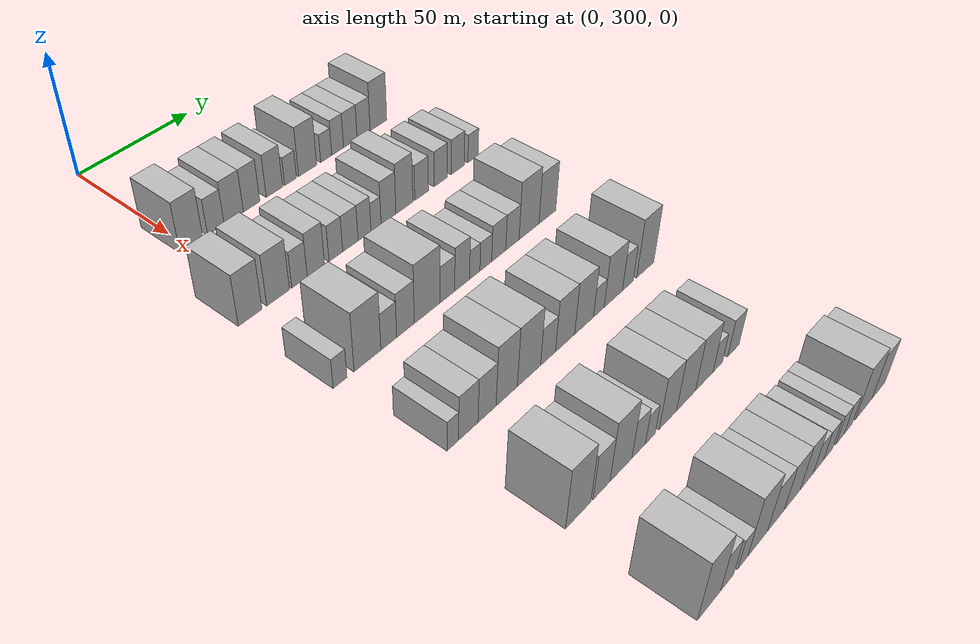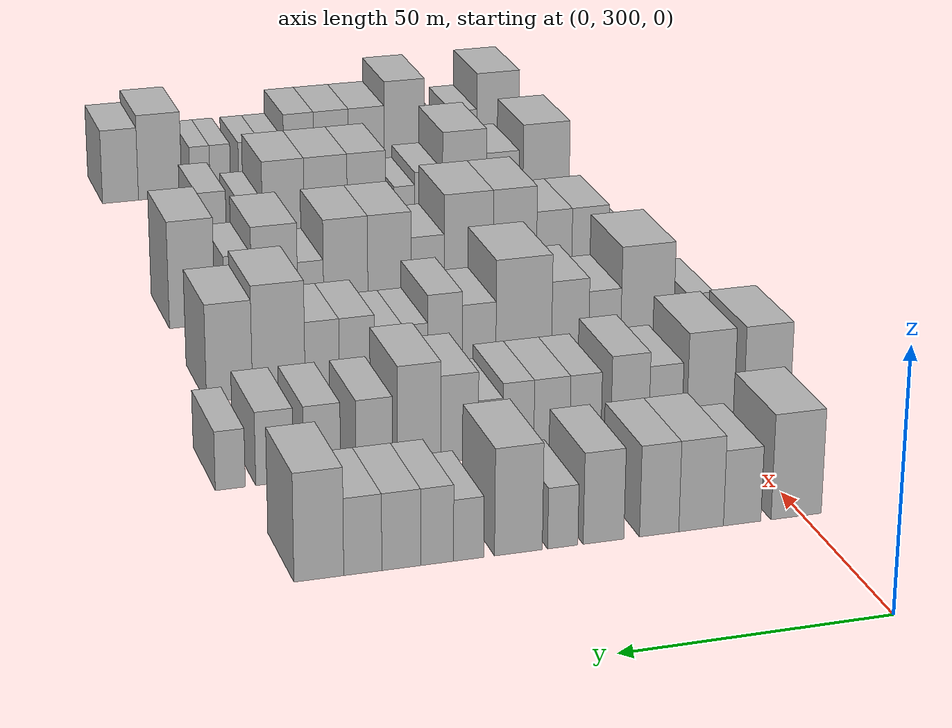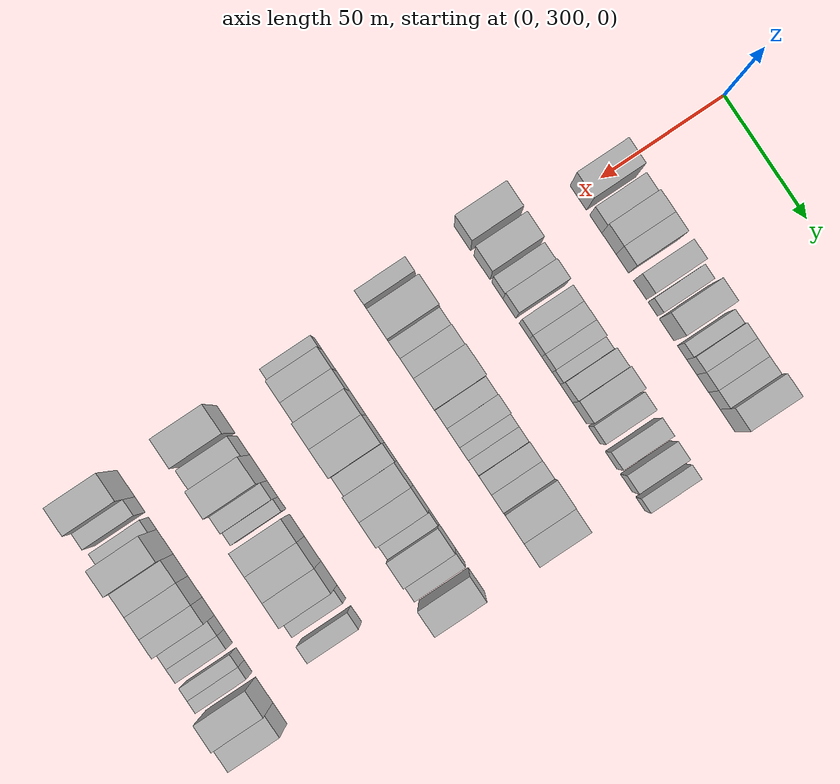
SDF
<sdf version="1.6">
 <world name="default">
  <model name="building_99">
   <static>1</static>
   <pose>50.0000 301.2675 0 0.000000 0.000000 0.000000</pose>
   <link name="link">
    <pose>0 0 10.50 0 0 0</pose>
    <collision name="collision"><geometry><box><size>20.0000 9.8966 21.0000</size></box></geometry></collision>
    <visual name="visual">
     <cast_shadows>0</cast_shadows>
     <geometry><box><size>20.0000 9.8966 21.0000</size></box></geometry>
     <material>
      <script>
       <uri>model://HANNAS_wall/materials/scripts</uri>
       <uri>model://HANNAS_wall/materials/textures</uri>
       <name>vrc/HANNAS_wall</name>
      </script>
     </material>
    </visual>
   </link>
  </model>
  <model name="building_100">
   <static>1</static>
   <pose>50.0000 311.8650 0 0.000000 0.000000 0.000000</pose>
   <link name="link">
    <pose>0 0 7.50 0 0 0</pose>
    <collision name="collision"><geometry><box><size>20.0000 7.2984 15.0000</size></box></geometry></collision>
    <visual name="visual">
     <cast_shadows>0</cast_shadows>
     <geometry><box><size>20.0000 7.2984 15.0000</size></box></geometry>
     <material>
      <script>
       <uri>model://HANNAS_wall/materials/scripts</uri>
       <uri>model://HANNAS_wall/materials/textures</uri>
       <name>vrc/HANNAS_wall</name>
      </script>
     </material>
    </visual>
   </link>
  </model>
  <model name="building_101">
   <static>1</static>
   <pose>50.0000 319.8413 0 0.000000 0.000000 0.000000</pose>
   <link name="link">
    <pose>0 0 9.00 0 0 0</pose>
    <collision name="collision"><geometry><box><size>20.0000 8.6542 18.0000</size></box></geometry></collision>
    <visual name="visual">
     <cast_shadows>0</cast_shadows>
     <geometry><box><size>20.0000 8.6542 18.0000</size></box></geometry>
     <material>
      <script>
       <uri>model://HANNAS_wall/materials/scripts</uri>
       <uri>model://HANNAS_wall/materials/textures</uri>
       <name>vrc/HANNAS_wall</name>
      </script>
     </material>
    </visual>
   </link>
  </model>
  <model name="building_102">
   <static>1</static>
   <pose>50.0000 327.9459 0 0.000000 0.000000 0.000000</pose>
   <link name="link">
    <pose>0 0 9.00 0 0 0</pose>
    <collision name="collision"><geometry><box><size>20.0000 7.5549 18.0000</size></box></geometry></collision>
    <visual name="visual">
     <cast_shadows>0</cast_shadows>
     <geometry><box><size>20.0000 7.5549 18.0000</size></box></geometry>
     <material>
      <script>
       <uri>model://HANNAS_wall/materials/scripts</uri>
       <uri>model://HANNAS_wall/materials/textures</uri>
       <name>vrc/HANNAS_wall</name>
      </script>
     </material>
    </visual>
   </link>
  </model>
  <model name="building_103">
   <static>1</static>
   <pose>50.0000 338.5932 0 0.000000 0.000000 0.000000</pose>
   <link name="link">
    <pose>0 0 9.00 0 0 0</pose>
    <collision name="collision"><geometry><box><size>20.0000 7.7397 18.0000</size></box></geometry></collision>
    <visual name="visual">
     <cast_shadows>0</cast_shadows>
     <geometry><box><size>20.0000 7.7397 18.0000</size></box></geometry>
     <material>
      <script>
       <uri>model://HANNAS_wall/materials/scripts</uri>
       <uri>model://HANNAS_wall/materials/textures</uri>
       <name>vrc/HANNAS_wall</name>
      </script>
     </material>
    </visual>
   </link>
  </model>
  <model name="building_104">
   <static>1</static>
   <pose>50.0000 346.3211 0 0.000000 0.000000 0.000000</pose>
   <link name="link">
    <pose>0 0 6.00 0 0 0</pose>
    <collision name="collision"><geometry><box><size>20.0000 5.7162 12.0000</size></box></geometry></collision>
    <visual name="visual">
     <cast_shadows>0</cast_shadows>
     <geometry><box><size>20.0000 5.7162 12.0000</size></box></geometry>
     <material>
      <script>
       <uri>model://HANNAS_wall/materials/scripts</uri>
       <uri>model://HANNAS_wall/materials/textures</uri>
       <name>vrc/HANNAS_wall</name>
      </script>
     </material>
    </visual>
   </link>
  </model>
  <model name="building_105">
   <static>1</static>
   <pose>50.0000 354.6565 0 0.000000 0.000000 0.000000</pose>
   <link name="link">
    <pose>0 0 10.50 0 0 0</pose>
    <collision name="collision"><geometry><box><size>20.0000 8.9545 21.0000</size></box></geometry></collision>
    <visual name="visual">
     <cast_shadows>0</cast_shadows>
     <geometry><box><size>20.0000 8.9545 21.0000</size></box></geometry>
     <material>
      <script>
       <uri>model://HANNAS_wall/materials/scripts</uri>
       <uri>model://HANNAS_wall/materials/textures</uri>
       <name>vrc/HANNAS_wall</name>
      </script>
     </material>
    </visual>
   </link>
  </model>
  <model name="building_106">
   <static>1</static>
   <pose>50.0000 363.9424 0 0.000000 0.000000 0.000000</pose>
   <link name="link">
    <pose>0 0 6.00 0 0 0</pose>
    <collision name="collision"><geometry><box><size>20.0000 5.6174 12.0000</size></box></geometry></collision>
    <visual name="visual">
     <cast_shadows>0</cast_shadows>
     <geometry><box><size>20.0000 5.6174 12.0000</size></box></geometry>
     <material>
      <script>
       <uri>model://HANNAS_wall/materials/scripts</uri>
       <uri>model://HANNAS_wall/materials/textures</uri>
       <name>vrc/HANNAS_wall</name>
      </script>
     </material>
    </visual>
   </link>
  </model>
  <model name="building_107">
   <static>1</static>
   <pose>50.0000 369.7936 0 0.000000 0.000000 0.000000</pose>
   <link name="link">
    <pose>0 0 7.50 0 0 0</pose>
    <collision name="collision"><geometry><box><size>20.0000 6.0850 15.0000</size></box></geometry></collision>
    <visual name="visual">
     <cast_shadows>0</cast_shadows>
     <geometry><box><size>20.0000 6.0850 15.0000</size></box></geometry>
     <material>
      <script>
       <uri>model://HANNAS_wall/materials/scripts</uri>
       <uri>model://HANNAS_wall/materials/textures</uri>
       <name>vrc/HANNAS_wall</name>
      </script>
     </material>
    </visual>
   </link>
  </model>
  <model name="building_108">
   <static>1</static>
   <pose>50.0000 376.3911 0 0.000000 0.000000 0.000000</pose>
   <link name="link">
    <pose>0 0 7.50 0 0 0</pose>
    <collision name="collision"><geometry><box><size>20.0000 7.1100 15.0000</size></box></geometry></collision>
    <visual name="visual">
     <cast_shadows>0</cast_shadows>
     <geometry><box><size>20.0000 7.1100 15.0000</size></box></geometry>
     <material>
      <script>
       <uri>model://HANNAS_wall/materials/scripts</uri>
       <uri>model://HANNAS_wall/materials/textures</uri>
       <name>vrc/HANNAS_wall</name>
      </script>
     </material>
    </visual>
   </link>
  </model>
  <model name="building_109">
   <static>1</static>
   <pose>50.0000 383.4183 0 0.000000 0.000000 0.000000</pose>
   <link name="link">
    <pose>0 0 7.50 0 0 0</pose>
    <collision name="collision"><geometry><box><size>20.0000 6.9444 15.0000</size></box></geometry></collision>
    <visual name="visual">
     <cast_shadows>0</cast_shadows>
     <geometry><box><size>20.0000 6.9444 15.0000</size></box></geometry>
     <material>
      <script>
       <uri>model://HANNAS_wall/materials/scripts</uri>
       <uri>model://HANNAS_wall/materials/textures</uri>
       <name>vrc/HANNAS_wall</name>
      </script>
     </material>
    </visual>
   </link>
  </model>
  <model name="building_110">
   <static>1</static>
   <pose>50.0000 391.3937 0 0.000000 0.000000 0.000000</pose>
   <link name="link">
    <pose>0 0 10.50 0 0 0</pose>
    <collision name="collision"><geometry><box><size>20.0000 9.0064 21.0000</size></box></geometry></collision>
    <visual name="visual">
     <cast_shadows>0</cast_shadows>
     <geometry><box><size>20.0000 9.0064 21.0000</size></box></geometry>
     <material>
      <script>
       <uri>model://HANNAS_wall/materials/scripts</uri>
       <uri>model://HANNAS_wall/materials/textures</uri>
       <name>vrc/HANNAS_wall</name>
      </script>
     </material>
    </visual>
   </link>
  </model>
  <model name="building_235">
   <static>1</static>
   <pose>90.0000 290.8982 0 0.000000 0.000000 0.000000</pose>
   <link name="link">
    <pose>0 0 10.50 0 0 0</pose>
    <collision name="collision"><geometry><box><size>20.0000 9.8229 21.0000</size></box></geometry></collision>
    <visual name="visual">
     <cast_shadows>0</cast_shadows>
     <geometry><box><size>20.0000 9.8229 21.0000</size></box></geometry>
     <material>
      <script>
       <uri>model://HANNAS_wall/materials/scripts</uri>
       <uri>model://HANNAS_wall/materials/textures</uri>
       <name>vrc/HANNAS_wall</name>
      </script>
     </material>
    </visual>
   </link>
  </model>
  <model name="building_236">
   <static>1</static>
   <pose>90.0000 302.6964 0 0.000000 0.000000 0.000000</pose>
   <link name="link">
    <pose>0 0 10.50 0 0 0</pose>
    <collision name="collision"><geometry><box><size>20.0000 9.7736 21.0000</size></box></geometry></collision>
    <visual name="visual">
     <cast_shadows>0</cast_shadows>
     <geometry><box><size>20.0000 9.7736 21.0000</size></box></geometry>
     <material>
      <script>
       <uri>model://HANNAS_wall/materials/scripts</uri>
       <uri>model://HANNAS_wall/materials/textures</uri>
       <name>vrc/HANNAS_wall</name>
      </script>
     </material>
    </visual>
   </link>
  </model>
  <model name="building_237">
   <static>1</static>
   <pose>90.0000 311.9946 0 0.000000 0.000000 0.000000</pose>
   <link name="link">
    <pose>0 0 7.50 0 0 0</pose>
    <collision name="collision"><geometry><box><size>20.0000 6.8229 15.0000</size></box></geometry></collision>
    <visual name="visual">
     <cast_shadows>0</cast_shadows>
     <geometry><box><size>20.0000 6.8229 15.0000</size></box></geometry>
     <material>
      <script>
       <uri>model://HANNAS_wall/materials/scripts</uri>
       <uri>model://HANNAS_wall/materials/textures</uri>
       <name>vrc/HANNAS_wall</name>
      </script>
     </material>
    </visual>
   </link>
  </model>
  <model name="building_238">
   <static>1</static>
   <pose>90.0000 319.3051 0 0.000000 0.000000 0.000000</pose>
   <link name="link">
    <pose>0 0 9.00 0 0 0</pose>
    <collision name="collision"><geometry><box><size>20.0000 7.7979 18.0000</size></box></geometry></collision>
    <visual name="visual">
     <cast_shadows>0</cast_shadows>
     <geometry><box><size>20.0000 7.7979 18.0000</size></box></geometry>
     <material>
      <script>
       <uri>model://HANNAS_wall/materials/scripts</uri>
       <uri>model://HANNAS_wall/materials/textures</uri>
       <name>vrc/HANNAS_wall</name>
      </script>
     </material>
    </visual>
   </link>
  </model>
  <model name="building_239">
   <static>1</static>
   <pose>90.0000 328.3818 0 0.000000 0.000000 0.000000</pose>
   <link name="link">
    <pose>0 0 7.50 0 0 0</pose>
    <collision name="collision"><geometry><box><size>20.0000 6.3555 15.0000</size></box></geometry></collision>
    <visual name="visual">
     <cast_shadows>0</cast_shadows>
     <geometry><box><size>20.0000 6.3555 15.0000</size></box></geometry>
     <material>
      <script>
       <uri>model://HANNAS_wall/materials/scripts</uri>
       <uri>model://HANNAS_wall/materials/textures</uri>
       <name>vrc/HANNAS_wall</name>
      </script>
     </material>
    </visual>
   </link>
  </model>
  <model name="building_240">
   <static>1</static>
   <pose>90.0000 335.1950 0 0.000000 0.000000 0.000000</pose>
   <link name="link">
    <pose>0 0 7.50 0 0 0</pose>
    <collision name="collision"><geometry><box><size>20.0000 7.2710 15.0000</size></box></geometry></collision>
    <visual name="visual">
     <cast_shadows>0</cast_shadows>
     <geometry><box><size>20.0000 7.2710 15.0000</size></box></geometry>
     <material>
      <script>
       <uri>model://HANNAS_wall/materials/scripts</uri>
       <uri>model://HANNAS_wall/materials/textures</uri>
       <name>vrc/HANNAS_wall</name>
      </script>
     </material>
    </visual>
   </link>
  </model>
  <model name="building_241">
   <static>1</static>
   <pose>90.0000 341.9415 0 0.000000 0.000000 0.000000</pose>
   <link name="link">
    <pose>0 0 7.50 0 0 0</pose>
    <collision name="collision"><geometry><box><size>20.0000 6.2219 15.0000</size></box></geometry></collision>
    <visual name="visual">
     <cast_shadows>0</cast_shadows>
     <geometry><box><size>20.0000 6.2219 15.0000</size></box></geometry>
     <material>
      <script>
       <uri>model://HANNAS_wall/materials/scripts</uri>
       <uri>model://HANNAS_wall/materials/textures</uri>
       <name>vrc/HANNAS_wall</name>
      </script>
     </material>
    </visual>
   </link>
  </model>
  <model name="building_242">
   <static>1</static>
   <pose>90.0000 347.5107 0 0.000000 0.000000 0.000000</pose>
   <link name="link">
    <pose>0 0 6.00 0 0 0</pose>
    <collision name="collision"><geometry><box><size>20.0000 4.9164 12.0000</size></box></geometry></collision>
    <visual name="visual">
     <cast_shadows>0</cast_shadows>
     <geometry><box><size>20.0000 4.9164 12.0000</size></box></geometry>
     <material>
      <script>
       <uri>model://HANNAS_wall/materials/scripts</uri>
       <uri>model://HANNAS_wall/materials/textures</uri>
       <name>vrc/HANNAS_wall</name>
      </script>
     </material>
    </visual>
   </link>
  </model>
  <model name="building_243">
   <static>1</static>
   <pose>90.0000 353.6718 0 0.000000 0.000000 0.000000</pose>
   <link name="link">
    <pose>0 0 9.00 0 0 0</pose>
    <collision name="collision"><geometry><box><size>20.0000 7.4057 18.0000</size></box></geometry></collision>
    <visual name="visual">
     <cast_shadows>0</cast_shadows>
     <geometry><box><size>20.0000 7.4057 18.0000</size></box></geometry>
     <material>
      <script>
       <uri>model://HANNAS_wall/materials/scripts</uri>
       <uri>model://HANNAS_wall/materials/textures</uri>
       <name>vrc/HANNAS_wall</name>
      </script>
     </material>
    </visual>
   </link>
  </model>
  <model name="building_244">
   <static>1</static>
   <pose>90.0000 361.6556 0 0.000000 0.000000 0.000000</pose>
   <link name="link">
    <pose>0 0 10.50 0 0 0</pose>
    <collision name="collision"><geometry><box><size>20.0000 8.5620 21.0000</size></box></geometry></collision>
    <visual name="visual">
     <cast_shadows>0</cast_shadows>
     <geometry><box><size>20.0000 8.5620 21.0000</size></box></geometry>
     <material>
      <script>
       <uri>model://HANNAS_wall/materials/scripts</uri>
       <uri>model://HANNAS_wall/materials/textures</uri>
       <name>vrc/HANNAS_wall</name>
      </script>
     </material>
    </visual>
   </link>
  </model>
  <model name="building_245">
   <static>1</static>
   <pose>90.0000 370.5216 0 0.000000 0.000000 0.000000</pose>
   <link name="link">
    <pose>0 0 7.50 0 0 0</pose>
    <collision name="collision"><geometry><box><size>20.0000 7.1699 15.0000</size></box></geometry></collision>
    <visual name="visual">
     <cast_shadows>0</cast_shadows>
     <geometry><box><size>20.0000 7.1699 15.0000</size></box></geometry>
     <material>
      <script>
       <uri>model://HANNAS_wall/materials/scripts</uri>
       <uri>model://HANNAS_wall/materials/textures</uri>
       <name>vrc/HANNAS_wall</name>
      </script>
     </material>
    </visual>
   </link>
  </model>
  <model name="building_246">
   <static>1</static>
   <pose>90.0000 380.6781 0 0.000000 0.000000 0.000000</pose>
   <link name="link">
    <pose>0 0 7.50 0 0 0</pose>
    <collision name="collision"><geometry><box><size>20.0000 7.1432 15.0000</size></box></geometry></collision>
    <visual name="visual">
     <cast_shadows>0</cast_shadows>
     <geometry><box><size>20.0000 7.1432 15.0000</size></box></geometry>
     <material>
      <script>
       <uri>model://HANNAS_wall/materials/scripts</uri>
       <uri>model://HANNAS_wall/materials/textures</uri>
       <name>vrc/HANNAS_wall</name>
      </script>
     </material>
    </visual>
   </link>
  </model>
  <model name="building_247">
   <static>1</static>
   <pose>90.0000 389.8850 0 0.000000 0.000000 0.000000</pose>
   <link name="link">
    <pose>0 0 7.50 0 0 0</pose>
    <collision name="collision"><geometry><box><size>20.0000 7.2706 15.0000</size></box></geometry></collision>
    <visual name="visual">
     <cast_shadows>0</cast_shadows>
     <geometry><box><size>20.0000 7.2706 15.0000</size></box></geometry>
     <material>
      <script>
       <uri>model://HANNAS_wall/materials/scripts</uri>
       <uri>model://HANNAS_wall/materials/textures</uri>
       <name>vrc/HANNAS_wall</name>
      </script>
     </material>
    </visual>
   </link>
  </model>
  <model name="building_248">
   <static>1</static>
   <pose>90.0000 398.3908 0 0.000000 0.000000 0.000000</pose>
   <link name="link">
    <pose>0 0 6.00 0 0 0</pose>
    <collision name="collision"><geometry><box><size>20.0000 5.7409 12.0000</size></box></geometry></collision>
    <visual name="visual">
     <cast_shadows>0</cast_shadows>
     <geometry><box><size>20.0000 5.7409 12.0000</size></box></geometry>
     <material>
      <script>
       <uri>model://HANNAS_wall/materials/scripts</uri>
       <uri>model://HANNAS_wall/materials/textures</uri>
       <name>vrc/HANNAS_wall</name>
      </script>
     </material>
    </visual>
   </link>
  </model>
  <model name="building_377">
   <static>1</static>
   <pose>130.0000 289.6293 0 0.000000 0.000000 0.000000</pose>
   <link name="link">
    <pose>0 0 6.00 0 0 0</pose>
    <collision name="collision"><geometry><box><size>20.0000 5.7135 12.0000</size></box></geometry></collision>
    <visual name="visual">
     <cast_shadows>0</cast_shadows>
     <geometry><box><size>20.0000 5.7135 12.0000</size></box></geometry>
     <material>
      <script>
       <uri>model://HANNAS_wall/materials/scripts</uri>
       <uri>model://HANNAS_wall/materials/textures</uri>
       <name>vrc/HANNAS_wall</name>
      </script>
     </material>
    </visual>
   </link>
  </model>
  <model name="building_378">
   <static>1</static>
   <pose>130.0000 301.2769 0 0.000000 0.000000 0.000000</pose>
   <link name="link">
    <pose>0 0 12.00 0 0 0</pose>
    <collision name="collision"><geometry><box><size>20.0000 11.5816 24.0000</size></box></geometry></collision>
    <visual name="visual">
     <cast_shadows>0</cast_shadows>
     <geometry><box><size>20.0000 11.5816 24.0000</size></box></geometry>
     <material>
      <script>
       <uri>model://HANNAS_wall/materials/scripts</uri>
       <uri>model://HANNAS_wall/materials/textures</uri>
       <name>vrc/HANNAS_wall</name>
      </script>
     </material>
    </visual>
   </link>
  </model>
  <model name="building_379">
   <static>1</static>
   <pose>130.0000 310.5489 0 0.000000 0.000000 0.000000</pose>
   <link name="link">
    <pose>0 0 7.50 0 0 0</pose>
    <collision name="collision"><geometry><box><size>20.0000 6.9625 15.0000</size></box></geometry></collision>
    <visual name="visual">
     <cast_shadows>0</cast_shadows>
     <geometry><box><size>20.0000 6.9625 15.0000</size></box></geometry>
     <material>
      <script>
       <uri>model://HANNAS_wall/materials/scripts</uri>
       <uri>model://HANNAS_wall/materials/textures</uri>
       <name>vrc/HANNAS_wall</name>
      </script>
     </material>
    </visual>
   </link>
  </model>
  <model name="building_380">
   <static>1</static>
   <pose>130.0000 318.0420 0 0.000000 0.000000 0.000000</pose>
   <link name="link">
    <pose>0 0 9.00 0 0 0</pose>
    <collision name="collision"><geometry><box><size>20.0000 8.0237 18.0000</size></box></geometry></collision>
    <visual name="visual">
     <cast_shadows>0</cast_shadows>
     <geometry><box><size>20.0000 8.0237 18.0000</size></box></geometry>
     <material>
      <script>
       <uri>model://HANNAS_wall/materials/scripts</uri>
       <uri>model://HANNAS_wall/materials/textures</uri>
       <name>vrc/HANNAS_wall</name>
      </script>
     </material>
    </visual>
   </link>
  </model>
  <model name="building_381">
   <static>1</static>
   <pose>130.0000 328.0350 0 0.000000 0.000000 0.000000</pose>
   <link name="link">
    <pose>0 0 12.00 0 0 0</pose>
    <collision name="collision"><geometry><box><size>20.0000 11.9623 24.0000</size></box></geometry></collision>
    <visual name="visual">
     <cast_shadows>0</cast_shadows>
     <geometry><box><size>20.0000 11.9623 24.0000</size></box></geometry>
     <material>
      <script>
       <uri>model://HANNAS_wall/materials/scripts</uri>
       <uri>model://HANNAS_wall/materials/textures</uri>
       <name>vrc/HANNAS_wall</name>
      </script>
     </material>
    </visual>
   </link>
  </model>
  <model name="building_382">
   <static>1</static>
   <pose>130.0000 337.5791 0 0.000000 0.000000 0.000000</pose>
   <link name="link">
    <pose>0 0 7.50 0 0 0</pose>
    <collision name="collision"><geometry><box><size>20.0000 7.1257 15.0000</size></box></geometry></collision>
    <visual name="visual">
     <cast_shadows>0</cast_shadows>
     <geometry><box><size>20.0000 7.1257 15.0000</size></box></geometry>
     <material>
      <script>
       <uri>model://HANNAS_wall/materials/scripts</uri>
       <uri>model://HANNAS_wall/materials/textures</uri>
       <name>vrc/HANNAS_wall</name>
      </script>
     </material>
    </visual>
   </link>
  </model>
  <model name="building_383">
   <static>1</static>
   <pose>130.0000 344.8250 0 0.000000 0.000000 0.000000</pose>
   <link name="link">
    <pose>0 0 9.00 0 0 0</pose>
    <collision name="collision"><geometry><box><size>20.0000 7.3661 18.0000</size></box></geometry></collision>
    <visual name="visual">
     <cast_shadows>0</cast_shadows>
     <geometry><box><size>20.0000 7.3661 18.0000</size></box></geometry>
     <material>
      <script>
       <uri>model://HANNAS_wall/materials/scripts</uri>
       <uri>model://HANNAS_wall/materials/textures</uri>
       <name>vrc/HANNAS_wall</name>
      </script>
     </material>
    </visual>
   </link>
  </model>
  <model name="building_384">
   <static>1</static>
   <pose>130.0000 351.0981 0 0.000000 0.000000 0.000000</pose>
   <link name="link">
    <pose>0 0 6.00 0 0 0</pose>
    <collision name="collision"><geometry><box><size>20.0000 5.1800 12.0000</size></box></geometry></collision>
    <visual name="visual">
     <cast_shadows>0</cast_shadows>
     <geometry><box><size>20.0000 5.1800 12.0000</size></box></geometry>
     <material>
      <script>
       <uri>model://HANNAS_wall/materials/scripts</uri>
       <uri>model://HANNAS_wall/materials/textures</uri>
       <name>vrc/HANNAS_wall</name>
      </script>
     </material>
    </visual>
   </link>
  </model>
  <model name="building_385">
   <static>1</static>
   <pose>130.0000 356.6680 0 0.000000 0.000000 0.000000</pose>
   <link name="link">
    <pose>0 0 6.00 0 0 0</pose>
    <collision name="collision"><geometry><box><size>20.0000 5.9599 12.0000</size></box></geometry></collision>
    <visual name="visual">
     <cast_shadows>0</cast_shadows>
     <geometry><box><size>20.0000 5.9599 12.0000</size></box></geometry>
     <material>
      <script>
       <uri>model://HANNAS_wall/materials/scripts</uri>
       <uri>model://HANNAS_wall/materials/textures</uri>
       <name>vrc/HANNAS_wall</name>
      </script>
     </material>
    </visual>
   </link>
  </model>
  <model name="building_386">
   <static>1</static>
   <pose>130.0000 363.3284 0 0.000000 0.000000 0.000000</pose>
   <link name="link">
    <pose>0 0 7.50 0 0 0</pose>
    <collision name="collision"><geometry><box><size>20.0000 7.3608 15.0000</size></box></geometry></collision>
    <visual name="visual">
     <cast_shadows>0</cast_shadows>
     <geometry><box><size>20.0000 7.3608 15.0000</size></box></geometry>
     <material>
      <script>
       <uri>model://HANNAS_wall/materials/scripts</uri>
       <uri>model://HANNAS_wall/materials/textures</uri>
       <name>vrc/HANNAS_wall</name>
      </script>
     </material>
    </visual>
   </link>
  </model>
  <model name="building_387">
   <static>1</static>
   <pose>130.0000 370.5588 0 0.000000 0.000000 0.000000</pose>
   <link name="link">
    <pose>0 0 7.50 0 0 0</pose>
    <collision name="collision"><geometry><box><size>20.0000 7.1002 15.0000</size></box></geometry></collision>
    <visual name="visual">
     <cast_shadows>0</cast_shadows>
     <geometry><box><size>20.0000 7.1002 15.0000</size></box></geometry>
     <material>
      <script>
       <uri>model://HANNAS_wall/materials/scripts</uri>
       <uri>model://HANNAS_wall/materials/textures</uri>
       <name>vrc/HANNAS_wall</name>
      </script>
     </material>
    </visual>
   </link>
  </model>
  <model name="building_388">
   <static>1</static>
   <pose>130.0000 379.5261 0 0.000000 0.000000 0.000000</pose>
   <link name="link">
    <pose>0 0 12.00 0 0 0</pose>
    <collision name="collision"><geometry><box><size>20.0000 10.8343 24.0000</size></box></geometry></collision>
    <visual name="visual">
     <cast_shadows>0</cast_shadows>
     <geometry><box><size>20.0000 10.8343 24.0000</size></box></geometry>
     <material>
      <script>
       <uri>model://HANNAS_wall/materials/scripts</uri>
       <uri>model://HANNAS_wall/materials/textures</uri>
       <name>vrc/HANNAS_wall</name>
      </script>
     </material>
    </visual>
   </link>
  </model>
  <model name="building_389">
   <static>1</static>
   <pose>130.0000 389.6473 0 0.000000 0.000000 0.000000</pose>
   <link name="link">
    <pose>0 0 10.50 0 0 0</pose>
    <collision name="collision"><geometry><box><size>20.0000 9.4083 21.0000</size></box></geometry></collision>
    <visual name="visual">
     <cast_shadows>0</cast_shadows>
     <geometry><box><size>20.0000 9.4083 21.0000</size></box></geometry>
     <material>
      <script>
       <uri>model://HANNAS_wall/materials/scripts</uri>
       <uri>model://HANNAS_wall/materials/textures</uri>
       <name>vrc/HANNAS_wall</name>
      </script>
     </material>
    </visual>
   </link>
  </model>
  <model name="building_517">
   <static>1</static>
   <pose>170.0000 293.2966 0 0.000000 0.000000 0.000000</pose>
   <link name="link">
    <pose>0 0 6.00 0 0 0</pose>
    <collision name="collision"><geometry><box><size>20.0000 4.8776 12.0000</size></box></geometry></collision>
    <visual name="visual">
     <cast_shadows>0</cast_shadows>
     <geometry><box><size>20.0000 4.8776 12.0000</size></box></geometry>
     <material>
      <script>
       <uri>model://HANNAS_wall/materials/scripts</uri>
       <uri>model://HANNAS_wall/materials/textures</uri>
       <name>vrc/HANNAS_wall</name>
      </script>
     </material>
    </visual>
   </link>
  </model>
  <model name="building_518">
   <static>1</static>
   <pose>170.0000 299.9841 0 0.000000 0.000000 0.000000</pose>
   <link name="link">
    <pose>0 0 9.00 0 0 0</pose>
    <collision name="collision"><geometry><box><size>20.0000 8.4973 18.0000</size></box></geometry></collision>
    <visual name="visual">
     <cast_shadows>0</cast_shadows>
     <geometry><box><size>20.0000 8.4973 18.0000</size></box></geometry>
     <material>
      <script>
       <uri>model://HANNAS_wall/materials/scripts</uri>
       <uri>model://HANNAS_wall/materials/textures</uri>
       <name>vrc/HANNAS_wall</name>
      </script>
     </material>
    </visual>
   </link>
  </model>
  <model name="building_519">
   <static>1</static>
   <pose>170.0000 308.2856 0 0.000000 0.000000 0.000000</pose>
   <link name="link">
    <pose>0 0 9.00 0 0 0</pose>
    <collision name="collision"><geometry><box><size>20.0000 8.1058 18.0000</size></box></geometry></collision>
    <visual name="visual">
     <cast_shadows>0</cast_shadows>
     <geometry><box><size>20.0000 8.1058 18.0000</size></box></geometry>
     <material>
      <script>
       <uri>model://HANNAS_wall/materials/scripts</uri>
       <uri>model://HANNAS_wall/materials/textures</uri>
       <name>vrc/HANNAS_wall</name>
      </script>
     </material>
    </visual>
   </link>
  </model>
  <model name="building_520">
   <static>1</static>
   <pose>170.0000 317.2705 0 0.000000 0.000000 0.000000</pose>
   <link name="link">
    <pose>0 0 12.00 0 0 0</pose>
    <collision name="collision"><geometry><box><size>20.0000 9.8639 24.0000</size></box></geometry></collision>
    <visual name="visual">
     <cast_shadows>0</cast_shadows>
     <geometry><box><size>20.0000 9.8639 24.0000</size></box></geometry>
     <material>
      <script>
       <uri>model://HANNAS_wall/materials/scripts</uri>
       <uri>model://HANNAS_wall/materials/textures</uri>
       <name>vrc/HANNAS_wall</name>
      </script>
     </material>
    </visual>
   </link>
  </model>
  <model name="building_521">
   <static>1</static>
   <pose>170.0000 327.7425 0 0.000000 0.000000 0.000000</pose>
   <link name="link">
    <pose>0 0 12.00 0 0 0</pose>
    <collision name="collision"><geometry><box><size>20.0000 11.0800 24.0000</size></box></geometry></collision>
    <visual name="visual">
     <cast_shadows>0</cast_shadows>
     <geometry><box><size>20.0000 11.0800 24.0000</size></box></geometry>
     <material>
      <script>
       <uri>model://HANNAS_wall/materials/scripts</uri>
       <uri>model://HANNAS_wall/materials/textures</uri>
       <name>vrc/HANNAS_wall</name>
      </script>
     </material>
    </visual>
   </link>
  </model>
  <model name="building_522">
   <static>1</static>
   <pose>170.0000 336.9728 0 0.000000 0.000000 0.000000</pose>
   <link name="link">
    <pose>0 0 7.50 0 0 0</pose>
    <collision name="collision"><geometry><box><size>20.0000 7.3806 15.0000</size></box></geometry></collision>
    <visual name="visual">
     <cast_shadows>0</cast_shadows>
     <geometry><box><size>20.0000 7.3806 15.0000</size></box></geometry>
     <material>
      <script>
       <uri>model://HANNAS_wall/materials/scripts</uri>
       <uri>model://HANNAS_wall/materials/textures</uri>
       <name>vrc/HANNAS_wall</name>
      </script>
     </material>
    </visual>
   </link>
  </model>
  <model name="building_523">
   <static>1</static>
   <pose>170.0000 345.4984 0 0.000000 0.000000 0.000000</pose>
   <link name="link">
    <pose>0 0 10.50 0 0 0</pose>
    <collision name="collision"><geometry><box><size>20.0000 9.6706 21.0000</size></box></geometry></collision>
    <visual name="visual">
     <cast_shadows>0</cast_shadows>
     <geometry><box><size>20.0000 9.6706 21.0000</size></box></geometry>
     <material>
      <script>
       <uri>model://HANNAS_wall/materials/scripts</uri>
       <uri>model://HANNAS_wall/materials/textures</uri>
       <name>vrc/HANNAS_wall</name>
      </script>
     </material>
    </visual>
   </link>
  </model>
  <model name="building_524">
   <static>1</static>
   <pose>170.0000 355.2367 0 0.000000 0.000000 0.000000</pose>
   <link name="link">
    <pose>0 0 10.50 0 0 0</pose>
    <collision name="collision"><geometry><box><size>20.0000 9.8058 21.0000</size></box></geometry></collision>
    <visual name="visual">
     <cast_shadows>0</cast_shadows>
     <geometry><box><size>20.0000 9.8058 21.0000</size></box></geometry>
     <material>
      <script>
       <uri>model://HANNAS_wall/materials/scripts</uri>
       <uri>model://HANNAS_wall/materials/textures</uri>
       <name>vrc/HANNAS_wall</name>
      </script>
     </material>
    </visual>
   </link>
  </model>
  <model name="building_525">
   <static>1</static>
   <pose>170.0000 362.9913 0 0.000000 0.000000 0.000000</pose>
   <link name="link">
    <pose>0 0 6.00 0 0 0</pose>
    <collision name="collision"><geometry><box><size>20.0000 5.7034 12.0000</size></box></geometry></collision>
    <visual name="visual">
     <cast_shadows>0</cast_shadows>
     <geometry><box><size>20.0000 5.7034 12.0000</size></box></geometry>
     <material>
      <script>
       <uri>model://HANNAS_wall/materials/scripts</uri>
       <uri>model://HANNAS_wall/materials/textures</uri>
       <name>vrc/HANNAS_wall</name>
      </script>
     </material>
    </visual>
   </link>
  </model>
  <model name="building_526">
   <static>1</static>
   <pose>170.0000 370.8541 0 0.000000 0.000000 0.000000</pose>
   <link name="link">
    <pose>0 0 10.50 0 0 0</pose>
    <collision name="collision"><geometry><box><size>20.0000 10.0222 21.0000</size></box></geometry></collision>
    <visual name="visual">
     <cast_shadows>0</cast_shadows>
     <geometry><box><size>20.0000 10.0222 21.0000</size></box></geometry>
     <material>
      <script>
       <uri>model://HANNAS_wall/materials/scripts</uri>
       <uri>model://HANNAS_wall/materials/textures</uri>
       <name>vrc/HANNAS_wall</name>
      </script>
     </material>
    </visual>
   </link>
  </model>
  <model name="building_527">
   <static>1</static>
   <pose>170.0000 378.8810 0 0.000000 0.000000 0.000000</pose>
   <link name="link">
    <pose>0 0 7.50 0 0 0</pose>
    <collision name="collision"><geometry><box><size>20.0000 6.0316 15.0000</size></box></geometry></collision>
    <visual name="visual">
     <cast_shadows>0</cast_shadows>
     <geometry><box><size>20.0000 6.0316 15.0000</size></box></geometry>
     <material>
      <script>
       <uri>model://HANNAS_wall/materials/scripts</uri>
       <uri>model://HANNAS_wall/materials/textures</uri>
       <name>vrc/HANNAS_wall</name>
      </script>
     </material>
    </visual>
   </link>
  </model>
  <model name="building_528">
   <static>1</static>
   <pose>170.0000 388.8342 0 0.000000 0.000000 0.000000</pose>
   <link name="link">
    <pose>0 0 12.00 0 0 0</pose>
    <collision name="collision"><geometry><box><size>20.0000 9.8749 24.0000</size></box></geometry></collision>
    <visual name="visual">
     <cast_shadows>0</cast_shadows>
     <geometry><box><size>20.0000 9.8749 24.0000</size></box></geometry>
     <material>
      <script>
       <uri>model://HANNAS_wall/materials/scripts</uri>
       <uri>model://HANNAS_wall/materials/textures</uri>
       <name>vrc/HANNAS_wall</name>
      </script>
     </material>
    </visual>
   </link>
  </model>
  <model name="building_645">
   <static>1</static>
   <pose>210.0000 297.0181 0 0.000000 0.000000 0.000000</pose>
   <link name="link">
    <pose>0 0 12.00 0 0 0</pose>
    <collision name="collision"><geometry><box><size>20.0000 11.2208 24.0000</size></box></geometry></collision>
    <visual name="visual">
     <cast_shadows>0</cast_shadows>
     <geometry><box><size>20.0000 11.2208 24.0000</size></box></geometry>
     <material>
      <script>
       <uri>model://HANNAS_wall/materials/scripts</uri>
       <uri>model://HANNAS_wall/materials/textures</uri>
       <name>vrc/HANNAS_wall</name>
      </script>
     </material>
    </visual>
   </link>
  </model>
  <model name="building_646">
   <static>1</static>
   <pose>210.0000 307.5325 0 0.000000 0.000000 0.000000</pose>
   <link name="link">
    <pose>0 0 9.00 0 0 0</pose>
    <collision name="collision"><geometry><box><size>20.0000 7.8080 18.0000</size></box></geometry></collision>
    <visual name="visual">
     <cast_shadows>0</cast_shadows>
     <geometry><box><size>20.0000 7.8080 18.0000</size></box></geometry>
     <material>
      <script>
       <uri>model://HANNAS_wall/materials/scripts</uri>
       <uri>model://HANNAS_wall/materials/textures</uri>
       <name>vrc/HANNAS_wall</name>
      </script>
     </material>
    </visual>
   </link>
  </model>
  <model name="building_647">
   <static>1</static>
   <pose>210.0000 316.6747 0 0.000000 0.000000 0.000000</pose>
   <link name="link">
    <pose>0 0 12.00 0 0 0</pose>
    <collision name="collision"><geometry><box><size>20.0000 10.4765 24.0000</size></box></geometry></collision>
    <visual name="visual">
     <cast_shadows>0</cast_shadows>
     <geometry><box><size>20.0000 10.4765 24.0000</size></box></geometry>
     <material>
      <script>
       <uri>model://HANNAS_wall/materials/scripts</uri>
       <uri>model://HANNAS_wall/materials/textures</uri>
       <name>vrc/HANNAS_wall</name>
      </script>
     </material>
    </visual>
   </link>
  </model>
  <model name="building_648">
   <static>1</static>
   <pose>210.0000 325.2075 0 0.000000 0.000000 0.000000</pose>
   <link name="link">
    <pose>0 0 7.50 0 0 0</pose>
    <collision name="collision"><geometry><box><size>20.0000 6.5891 15.0000</size></box></geometry></collision>
    <visual name="visual">
     <cast_shadows>0</cast_shadows>
     <geometry><box><size>20.0000 6.5891 15.0000</size></box></geometry>
     <material>
      <script>
       <uri>model://HANNAS_wall/materials/scripts</uri>
       <uri>model://HANNAS_wall/materials/textures</uri>
       <name>vrc/HANNAS_wall</name>
      </script>
     </material>
    </visual>
   </link>
  </model>
  <model name="building_649">
   <static>1</static>
   <pose>210.0000 330.9570 0 0.000000 0.000000 0.000000</pose>
   <link name="link">
    <pose>0 0 6.00 0 0 0</pose>
    <collision name="collision"><geometry><box><size>20.0000 4.9098 12.0000</size></box></geometry></collision>
    <visual name="visual">
     <cast_shadows>0</cast_shadows>
     <geometry><box><size>20.0000 4.9098 12.0000</size></box></geometry>
     <material>
      <script>
       <uri>model://HANNAS_wall/materials/scripts</uri>
       <uri>model://HANNAS_wall/materials/textures</uri>
       <name>vrc/HANNAS_wall</name>
      </script>
     </material>
    </visual>
   </link>
  </model>
  <model name="building_650">
   <static>1</static>
   <pose>210.0000 339.9273 0 0.000000 0.000000 0.000000</pose>
   <link name="link">
    <pose>0 0 10.50 0 0 0</pose>
    <collision name="collision"><geometry><box><size>20.0000 9.0308 21.0000</size></box></geometry></collision>
    <visual name="visual">
     <cast_shadows>0</cast_shadows>
     <geometry><box><size>20.0000 9.0308 21.0000</size></box></geometry>
     <material>
      <script>
       <uri>model://HANNAS_wall/materials/scripts</uri>
       <uri>model://HANNAS_wall/materials/textures</uri>
       <name>vrc/HANNAS_wall</name>
      </script>
     </material>
    </visual>
   </link>
  </model>
  <model name="building_651">
   <static>1</static>
   <pose>210.0000 349.4690 0 0.000000 0.000000 0.000000</pose>
   <link name="link">
    <pose>0 0 10.50 0 0 0</pose>
    <collision name="collision"><geometry><box><size>20.0000 10.0525 21.0000</size></box></geometry></collision>
    <visual name="visual">
     <cast_shadows>0</cast_shadows>
     <geometry><box><size>20.0000 10.0525 21.0000</size></box></geometry>
     <material>
      <script>
       <uri>model://HANNAS_wall/materials/scripts</uri>
       <uri>model://HANNAS_wall/materials/textures</uri>
       <name>vrc/HANNAS_wall</name>
      </script>
     </material>
    </visual>
   </link>
  </model>
  <model name="building_652">
   <static>1</static>
   <pose>210.0000 359.3406 0 0.000000 0.000000 0.000000</pose>
   <link name="link">
    <pose>0 0 10.50 0 0 0</pose>
    <collision name="collision"><geometry><box><size>20.0000 9.6908 21.0000</size></box></geometry></collision>
    <visual name="visual">
     <cast_shadows>0</cast_shadows>
     <geometry><box><size>20.0000 9.6908 21.0000</size></box></geometry>
     <material>
      <script>
       <uri>model://HANNAS_wall/materials/scripts</uri>
       <uri>model://HANNAS_wall/materials/textures</uri>
       <name>vrc/HANNAS_wall</name>
      </script>
     </material>
    </visual>
   </link>
  </model>
  <model name="building_653">
   <static>1</static>
   <pose>210.0000 366.8609 0 0.000000 0.000000 0.000000</pose>
   <link name="link">
    <pose>0 0 6.00 0 0 0</pose>
    <collision name="collision"><geometry><box><size>20.0000 5.3498 12.0000</size></box></geometry></collision>
    <visual name="visual">
     <cast_shadows>0</cast_shadows>
     <geometry><box><size>20.0000 5.3498 12.0000</size></box></geometry>
     <material>
      <script>
       <uri>model://HANNAS_wall/materials/scripts</uri>
       <uri>model://HANNAS_wall/materials/textures</uri>
       <name>vrc/HANNAS_wall</name>
      </script>
     </material>
    </visual>
   </link>
  </model>
  <model name="building_654">
   <static>1</static>
   <pose>210.0000 375.8324 0 0.000000 0.000000 0.000000</pose>
   <link name="link">
    <pose>0 0 7.50 0 0 0</pose>
    <collision name="collision"><geometry><box><size>20.0000 6.5932 15.0000</size></box></geometry></collision>
    <visual name="visual">
     <cast_shadows>0</cast_shadows>
     <geometry><box><size>20.0000 6.5932 15.0000</size></box></geometry>
     <material>
      <script>
       <uri>model://HANNAS_wall/materials/scripts</uri>
       <uri>model://HANNAS_wall/materials/textures</uri>
       <name>vrc/HANNAS_wall</name>
      </script>
     </material>
    </visual>
   </link>
  </model>
  <model name="building_773">
   <static>1</static>
   <pose>250.0000 296.2080 0 0.000000 0.000000 0.000000</pose>
   <link name="link">
    <pose>0 0 12.00 0 0 0</pose>
    <collision name="collision"><geometry><box><size>20.0000 10.7790 24.0000</size></box></geometry></collision>
    <visual name="visual">
     <cast_shadows>0</cast_shadows>
     <geometry><box><size>20.0000 10.7790 24.0000</size></box></geometry>
     <material>
      <script>
       <uri>model://HANNAS_wall/materials/scripts</uri>
       <uri>model://HANNAS_wall/materials/textures</uri>
       <name>vrc/HANNAS_wall</name>
      </script>
     </material>
    </visual>
   </link>
  </model>
  <model name="building_774">
   <static>1</static>
   <pose>250.0000 304.7407 0 0.000000 0.000000 0.000000</pose>
   <link name="link">
    <pose>0 0 7.50 0 0 0</pose>
    <collision name="collision"><geometry><box><size>20.0000 6.2862 15.0000</size></box></geometry></collision>
    <visual name="visual">
     <cast_shadows>0</cast_shadows>
     <geometry><box><size>20.0000 6.2862 15.0000</size></box></geometry>
     <material>
      <script>
       <uri>model://HANNAS_wall/materials/scripts</uri>
       <uri>model://HANNAS_wall/materials/textures</uri>
       <name>vrc/HANNAS_wall</name>
      </script>
     </material>
    </visual>
   </link>
  </model>
  <model name="building_775">
   <static>1</static>
   <pose>250.0000 312.3400 0 0.000000 0.000000 0.000000</pose>
   <link name="link">
    <pose>0 0 6.00 0 0 0</pose>
    <collision name="collision"><geometry><box><size>20.0000 4.9125 12.0000</size></box></geometry></collision>
    <visual name="visual">
     <cast_shadows>0</cast_shadows>
     <geometry><box><size>20.0000 4.9125 12.0000</size></box></geometry>
     <material>
      <script>
       <uri>model://HANNAS_wall/materials/scripts</uri>
       <uri>model://HANNAS_wall/materials/textures</uri>
       <name>vrc/HANNAS_wall</name>
      </script>
     </material>
    </visual>
   </link>
  </model>
  <model name="building_776">
   <static>1</static>
   <pose>250.0000 319.8169 0 0.000000 0.000000 0.000000</pose>
   <link name="link">
    <pose>0 0 12.00 0 0 0</pose>
    <collision name="collision"><geometry><box><size>20.0000 10.0414 24.0000</size></box></geometry></collision>
    <visual name="visual">
     <cast_shadows>0</cast_shadows>
     <geometry><box><size>20.0000 10.0414 24.0000</size></box></geometry>
     <material>
      <script>
       <uri>model://HANNAS_wall/materials/scripts</uri>
       <uri>model://HANNAS_wall/materials/textures</uri>
       <name>vrc/HANNAS_wall</name>
      </script>
     </material>
    </visual>
   </link>
  </model>
  <model name="building_777">
   <static>1</static>
   <pose>250.0000 329.2592 0 0.000000 0.000000 0.000000</pose>
   <link name="link">
    <pose>0 0 9.00 0 0 0</pose>
    <collision name="collision"><geometry><box><size>20.0000 8.8430 18.0000</size></box></geometry></collision>
    <visual name="visual">
     <cast_shadows>0</cast_shadows>
     <geometry><box><size>20.0000 8.8430 18.0000</size></box></geometry>
     <material>
      <script>
       <uri>model://HANNAS_wall/materials/scripts</uri>
       <uri>model://HANNAS_wall/materials/textures</uri>
       <name>vrc/HANNAS_wall</name>
      </script>
     </material>
    </visual>
   </link>
  </model>
  <model name="building_778">
   <static>1</static>
   <pose>250.0000 337.9914 0 0.000000 0.000000 0.000000</pose>
   <link name="link">
    <pose>0 0 9.00 0 0 0</pose>
    <collision name="collision"><geometry><box><size>20.0000 8.6215 18.0000</size></box></geometry></collision>
    <visual name="visual">
     <cast_shadows>0</cast_shadows>
     <geometry><box><size>20.0000 8.6215 18.0000</size></box></geometry>
     <material>
      <script>
       <uri>model://HANNAS_wall/materials/scripts</uri>
       <uri>model://HANNAS_wall/materials/textures</uri>
       <name>vrc/HANNAS_wall</name>
      </script>
     </material>
    </visual>
   </link>
  </model>
  <model name="building_779">
   <static>1</static>
   <pose>250.0000 345.9878 0 0.000000 0.000000 0.000000</pose>
   <link name="link">
    <pose>0 0 9.00 0 0 0</pose>
    <collision name="collision"><geometry><box><size>20.0000 7.3712 18.0000</size></box></geometry></collision>
    <visual name="visual">
     <cast_shadows>0</cast_shadows>
     <geometry><box><size>20.0000 7.3712 18.0000</size></box></geometry>
     <material>
      <script>
       <uri>model://HANNAS_wall/materials/scripts</uri>
       <uri>model://HANNAS_wall/materials/textures</uri>
       <name>vrc/HANNAS_wall</name>
      </script>
     </material>
    </visual>
   </link>
  </model>
  <model name="building_780">
   <static>1</static>
   <pose>250.0000 352.5290 0 0.000000 0.000000 0.000000</pose>
   <link name="link">
    <pose>0 0 6.00 0 0 0</pose>
    <collision name="collision"><geometry><box><size>20.0000 5.7113 12.0000</size></box></geometry></collision>
    <visual name="visual">
     <cast_shadows>0</cast_shadows>
     <geometry><box><size>20.0000 5.7113 12.0000</size></box></geometry>
     <material>
      <script>
       <uri>model://HANNAS_wall/materials/scripts</uri>
       <uri>model://HANNAS_wall/materials/textures</uri>
       <name>vrc/HANNAS_wall</name>
      </script>
     </material>
    </visual>
   </link>
  </model>
  <model name="building_781">
   <static>1</static>
   <pose>250.0000 358.0659 0 0.000000 0.000000 0.000000</pose>
   <link name="link">
    <pose>0 0 6.00 0 0 0</pose>
    <collision name="collision"><geometry><box><size>20.0000 5.3624 12.0000</size></box></geometry></collision>
    <visual name="visual">
     <cast_shadows>0</cast_shadows>
     <geometry><box><size>20.0000 5.3624 12.0000</size></box></geometry>
     <material>
      <script>
       <uri>model://HANNAS_wall/materials/scripts</uri>
       <uri>model://HANNAS_wall/materials/textures</uri>
       <name>vrc/HANNAS_wall</name>
      </script>
     </material>
    </visual>
   </link>
  </model>
  <model name="building_782">
   <static>1</static>
   <pose>250.0000 365.2359 0 0.000000 0.000000 0.000000</pose>
   <link name="link">
    <pose>0 0 6.00 0 0 0</pose>
    <collision name="collision"><geometry><box><size>20.0000 4.9776 12.0000</size></box></geometry></collision>
    <visual name="visual">
     <cast_shadows>0</cast_shadows>
     <geometry><box><size>20.0000 4.9776 12.0000</size></box></geometry>
     <material>
      <script>
       <uri>model://HANNAS_wall/materials/scripts</uri>
       <uri>model://HANNAS_wall/materials/textures</uri>
       <name>vrc/HANNAS_wall</name>
      </script>
     </material>
    </visual>
   </link>
  </model>
  <model name="building_783">
   <static>1</static>
   <pose>250.0000 370.1517 0 0.000000 0.000000 0.000000</pose>
   <link name="link">
    <pose>0 0 6.00 0 0 0</pose>
    <collision name="collision"><geometry><box><size>20.0000 4.8541 12.0000</size></box></geometry></collision>
    <visual name="visual">
     <cast_shadows>0</cast_shadows>
     <geometry><box><size>20.0000 4.8541 12.0000</size></box></geometry>
     <material>
      <script>
       <uri>model://HANNAS_wall/materials/scripts</uri>
       <uri>model://HANNAS_wall/materials/textures</uri>
       <name>vrc/HANNAS_wall</name>
      </script>
     </material>
    </visual>
   </link>
  </model>
  <model name="building_784">
   <static>1</static>
   <pose>250.0000 379.8062 0 0.000000 0.000000 0.000000</pose>
   <link name="link">
    <pose>0 0 10.50 0 0 0</pose>
    <collision name="collision"><geometry><box><size>20.0000 10.4548 21.0000</size></box></geometry></collision>
    <visual name="visual">
     <cast_shadows>0</cast_shadows>
     <geometry><box><size>20.0000 10.4548 21.0000</size></box></geometry>
     <material>
      <script>
       <uri>model://HANNAS_wall/materials/scripts</uri>
       <uri>model://HANNAS_wall/materials/textures</uri>
       <name>vrc/HANNAS_wall</name>
      </script>
     </material>
    </visual>
   </link>
  </model>
  <model name="building_785">
   <static>1</static>
   <pose>250.0000 389.3315 0 0.000000 0.000000 0.000000</pose>
   <link name="link">
    <pose>0 0 9.00 0 0 0</pose>
    <collision name="collision"><geometry><box><size>20.0000 8.5957 18.0000</size></box></geometry></collision>
    <visual name="visual">
     <cast_shadows>0</cast_shadows>
     <geometry><box><size>20.0000 8.5957 18.0000</size></box></geometry>
     <material>
      <script>
       <uri>model://HANNAS_wall/materials/scripts</uri>
       <uri>model://HANNAS_wall/materials/textures</uri>
       <name>vrc/HANNAS_wall</name>
      </script>
     </material>
    </visual>
   </link>
  </model>
 </world>
</sdf>
